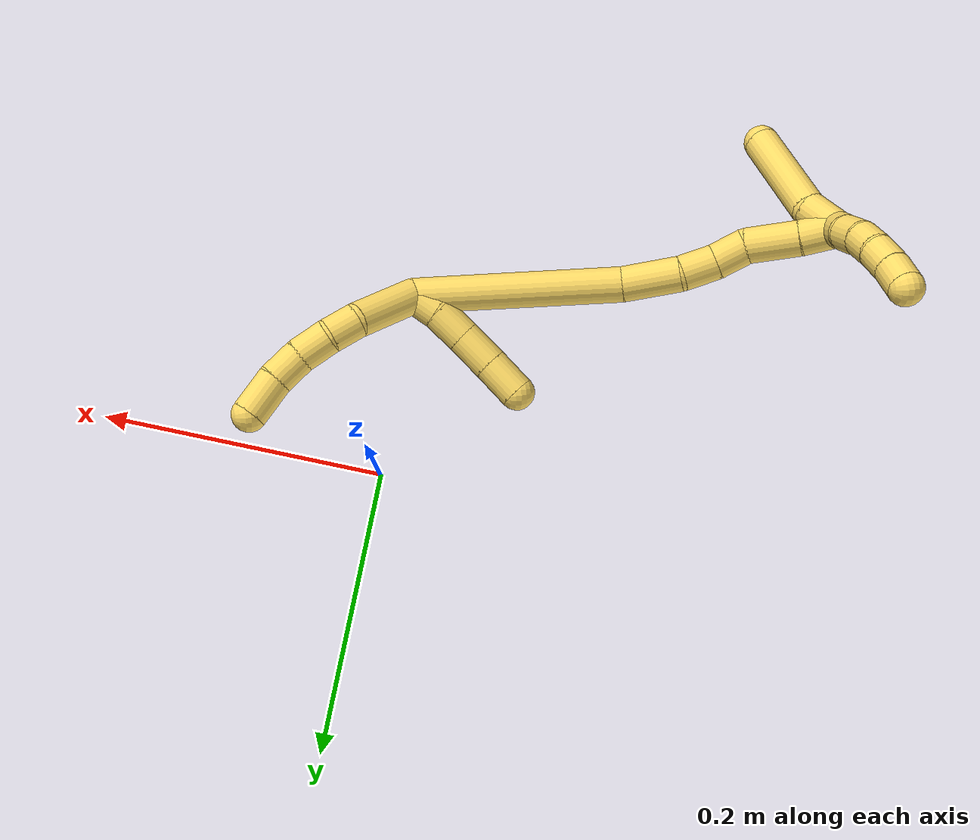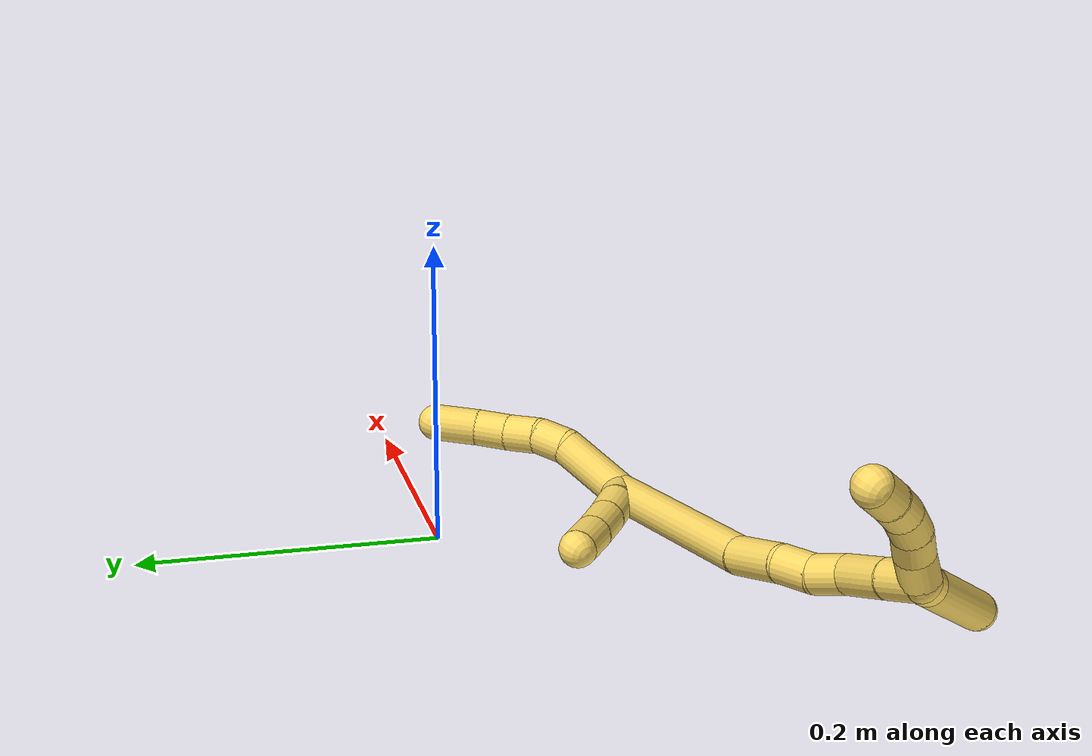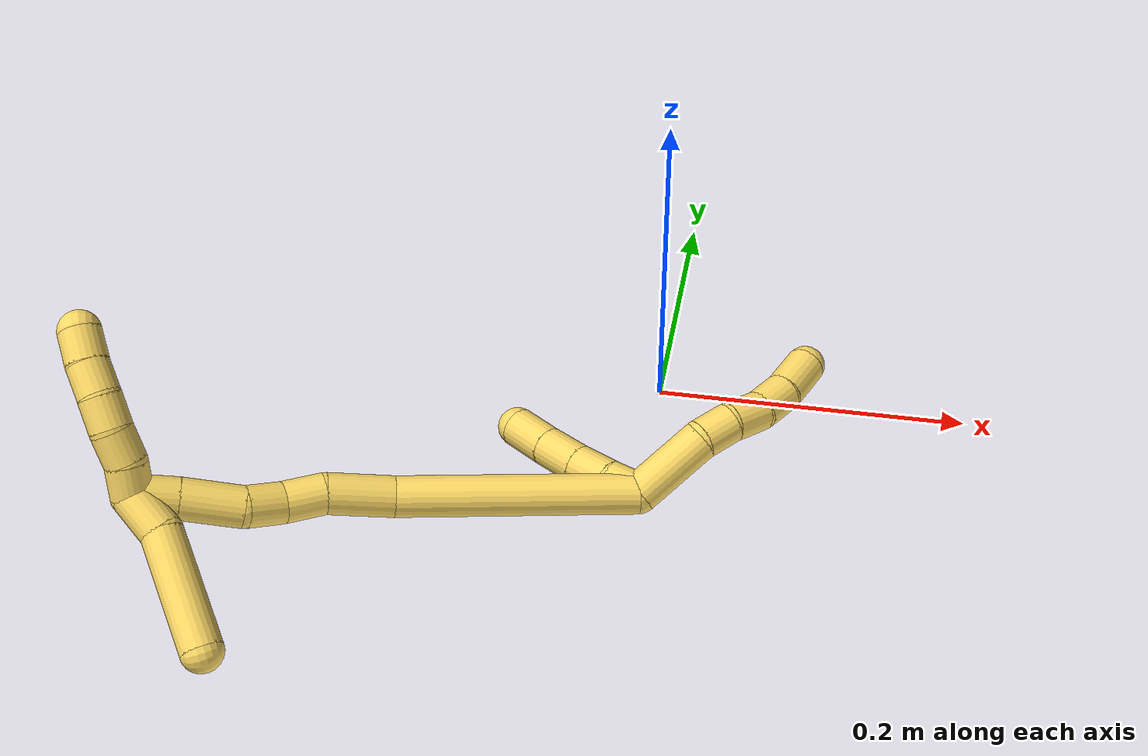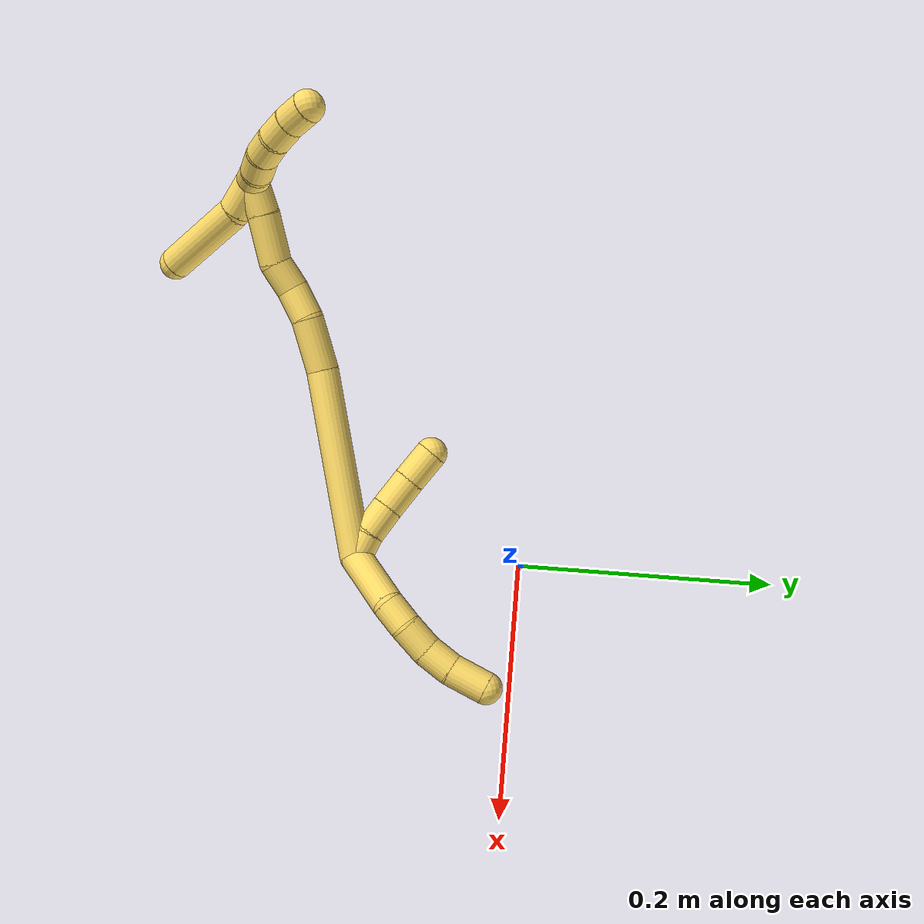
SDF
<sdf version="1.7">
 <world name="default">
  <model name="5">
   <static>0</static>
   <link name="5">
    <collision name="collision-cylinder-e_1_2_8">
     <pose>0.001376 -0.010261 -0.022862 2.71974 0.054838 0.254796</pose>
     <geometry><cylinder><radius>0.0125</radius><length>0.050194</length></cylinder></geometry>
     <surface>
      <friction><ode><mu>1.16</mu><mu2>1.16</mu2><slip1>0</slip1><slip2>0</slip2></ode></friction>
      <contact><ode><kp>1e+06</kp><kd>1</kd><max_vel>0</max_vel><min_depth>0.001</min_depth></ode></contact>
     </surface>
    </collision>
    <visual name="visual-cylinder-e_1_2_8">
     <pose>0.001376 -0.010261 -0.022862 2.71974 0.054838 0.254796</pose>
     <geometry><cylinder><radius>0.0125</radius><length>0.050194</length></cylinder></geometry>
     <material><ambient>1 0.858824 0.4 1</ambient></material>
    </visual>
    <collision name="collision-cylinder-e_2_8_9">
     <pose>0.006165 -0.02277 -0.056005 2.92624 0.31371 1.94251</pose>
     <geometry><cylinder><radius>0.0125</radius><length>0.022126</length></cylinder></geometry>
     <surface>
      <friction><ode><mu>1.16</mu><mu2>1.16</mu2><slip1>0</slip1><slip2>0</slip2></ode></friction>
      <contact><ode><kp>1e+06</kp><kd>1</kd><max_vel>0</max_vel><min_depth>0.001</min_depth></ode></contact>
     </surface>
    </collision>
    <visual name="visual-cylinder-e_2_8_9">
     <pose>0.006165 -0.02277 -0.056005 2.92624 0.31371 1.94251</pose>
     <geometry><cylinder><radius>0.0125</radius><length>0.022126</length></cylinder></geometry>
     <material><ambient>1 0.858824 0.4 1</ambient></material>
    </visual>
    <collision name="collision-cylinder-e_3_9_10">
     <pose>0.015345 -0.025571 -0.076835 3.08929 0.499603 2.93727</pose>
     <geometry><cylinder><radius>0.0125</radius><length>0.02407</length></cylinder></geometry>
     <surface>
      <friction><ode><mu>1.16</mu><mu2>1.16</mu2><slip1>0</slip1><slip2>0</slip2></ode></friction>
      <contact><ode><kp>1e+06</kp><kd>1</kd><max_vel>0</max_vel><min_depth>0.001</min_depth></ode></contact>
     </surface>
    </collision>
    <visual name="visual-cylinder-e_3_9_10">
     <pose>0.015345 -0.025571 -0.076835 3.08929 0.499603 2.93727</pose>
     <geometry><cylinder><radius>0.0125</radius><length>0.02407</length></cylinder></geometry>
     <material><ambient>1 0.858824 0.4 1</ambient></material>
    </visual>
    <collision name="collision-cylinder-e_4_10_11">
     <pose>0.027311 -0.029119 -0.096987 2.8392 0.552402 2.15515</pose>
     <geometry><cylinder><radius>0.0125</radius><length>0.023635</length></cylinder></geometry>
     <surface>
      <friction><ode><mu>1.16</mu><mu2>1.16</mu2><slip1>0</slip1><slip2>0</slip2></ode></friction>
      <contact><ode><kp>1e+06</kp><kd>1</kd><max_vel>0</max_vel><min_depth>0.001</min_depth></ode></contact>
     </surface>
    </collision>
    <visual name="visual-cylinder-e_4_10_11">
     <pose>0.027311 -0.029119 -0.096987 2.8392 0.552402 2.15515</pose>
     <geometry><cylinder><radius>0.0125</radius><length>0.023635</length></cylinder></geometry>
     <material><ambient>1 0.858824 0.4 1</ambient></material>
    </visual>
    <collision name="collision-cylinder-e_5_11_6">
     <pose>0.042509 -0.037759 -0.117165 2.65132 0.643859 1.85451</pose>
     <geometry><cylinder><radius>0.0125</radius><length>0.029975</length></cylinder></geometry>
     <surface>
      <friction><ode><mu>1.16</mu><mu2>1.16</mu2><slip1>0</slip1><slip2>0</slip2></ode></friction>
      <contact><ode><kp>1e+06</kp><kd>1</kd><max_vel>0</max_vel><min_depth>0.001</min_depth></ode></contact>
     </surface>
    </collision>
    <visual name="visual-cylinder-e_5_11_6">
     <pose>0.042509 -0.037759 -0.117165 2.65132 0.643859 1.85451</pose>
     <geometry><cylinder><radius>0.0125</radius><length>0.029975</length></cylinder></geometry>
     <material><ambient>1 0.858824 0.4 1</ambient></material>
    </visual>
    <collision name="collision-cylinder-e_1_2_12">
     <pose>0.004665 -0.005939 0.007182 0.690879 0.464104 0.169672</pose>
     <geometry><cylinder><radius>0.0125</radius><length>0.020844</length></cylinder></geometry>
     <surface>
      <friction><ode><mu>1.16</mu><mu2>1.16</mu2><slip1>0</slip1><slip2>0</slip2></ode></friction>
      <contact><ode><kp>1e+06</kp><kd>1</kd><max_vel>0</max_vel><min_depth>0.001</min_depth></ode></contact>
     </surface>
    </collision>
    <visual name="visual-cylinder-e_1_2_12">
     <pose>0.004665 -0.005939 0.007182 0.690879 0.464104 0.169672</pose>
     <geometry><cylinder><radius>0.0125</radius><length>0.020844</length></cylinder></geometry>
     <material><ambient>1 0.858824 0.4 1</ambient></material>
    </visual>
    <collision name="collision-cylinder-e_2_12_13">
     <pose>0.016799 -0.018432 0.021714 0.72835 0.648843 0.254992</pose>
     <geometry><cylinder><radius>0.0125</radius><length>0.024719</length></cylinder></geometry>
     <surface>
      <friction><ode><mu>1.16</mu><mu2>1.16</mu2><slip1>0</slip1><slip2>0</slip2></ode></friction>
      <contact><ode><kp>1e+06</kp><kd>1</kd><max_vel>0</max_vel><min_depth>0.001</min_depth></ode></contact>
     </surface>
    </collision>
    <visual name="visual-cylinder-e_2_12_13">
     <pose>0.016799 -0.018432 0.021714 0.72835 0.648843 0.254992</pose>
     <geometry><cylinder><radius>0.0125</radius><length>0.024719</length></cylinder></geometry>
     <material><ambient>1 0.858824 0.4 1</ambient></material>
    </visual>
    <collision name="collision-cylinder-e_3_13_14">
     <pose>0.032349 -0.032752 0.036709 0.793107 0.638149 0.274925</pose>
     <geometry><cylinder><radius>0.0125</radius><length>0.027134</length></cylinder></geometry>
     <surface>
      <friction><ode><mu>1.16</mu><mu2>1.16</mu2><slip1>0</slip1><slip2>0</slip2></ode></friction>
      <contact><ode><kp>1e+06</kp><kd>1</kd><max_vel>0</max_vel><min_depth>0.001</min_depth></ode></contact>
     </surface>
    </collision>
    <visual name="visual-cylinder-e_3_13_14">
     <pose>0.032349 -0.032752 0.036709 0.793107 0.638149 0.274925</pose>
     <geometry><cylinder><radius>0.0125</radius><length>0.027134</length></cylinder></geometry>
     <material><ambient>1 0.858824 0.4 1</ambient></material>
    </visual>
    <collision name="collision-cylinder-e_4_14_5">
     <pose>0.048506 -0.048727 0.051686 0.841901 0.632888 0.291131</pose>
     <geometry><cylinder><radius>0.0125</radius><length>0.027303</length></cylinder></geometry>
     <surface>
      <friction><ode><mu>1.16</mu><mu2>1.16</mu2><slip1>0</slip1><slip2>0</slip2></ode></friction>
      <contact><ode><kp>1e+06</kp><kd>1</kd><max_vel>0</max_vel><min_depth>0.001</min_depth></ode></contact>
     </surface>
    </collision>
    <visual name="visual-cylinder-e_4_14_5">
     <pose>0.048506 -0.048727 0.051686 0.841901 0.632888 0.291131</pose>
     <geometry><cylinder><radius>0.0125</radius><length>0.027303</length></cylinder></geometry>
     <material><ambient>1 0.858824 0.4 1</ambient></material>
    </visual>
    <collision name="collision-cylinder-e_1_2_15">
     <pose>-0.004081 -0.020034 0.070409 0.277209 -0.055686 -0.00777</pose>
     <geometry><cylinder><radius>0.0125</radius><length>0.146635</length></cylinder></geometry>
     <surface>
      <friction><ode><mu>1.16</mu><mu2>1.16</mu2><slip1>0</slip1><slip2>0</slip2></ode></friction>
      <contact><ode><kp>1e+06</kp><kd>1</kd><max_vel>0</max_vel><min_depth>0.001</min_depth></ode></contact>
     </surface>
    </collision>
    <visual name="visual-cylinder-e_1_2_15">
     <pose>-0.004081 -0.020034 0.070409 0.277209 -0.055686 -0.00777</pose>
     <geometry><cylinder><radius>0.0125</radius><length>0.146635</length></cylinder></geometry>
     <material><ambient>1 0.858824 0.4 1</ambient></material>
    </visual>
    <collision name="collision-cylinder-e_2_15_16">
     <pose>-0.012881 -0.046987 0.159732 0.350708 -0.230219 -0.040964</pose>
     <geometry><cylinder><radius>0.0125</radius><length>0.041371</length></cylinder></geometry>
     <surface>
      <friction><ode><mu>1.16</mu><mu2>1.16</mu2><slip1>0</slip1><slip2>0</slip2></ode></friction>
      <contact><ode><kp>1e+06</kp><kd>1</kd><max_vel>0</max_vel><min_depth>0.001</min_depth></ode></contact>
     </surface>
    </collision>
    <visual name="visual-cylinder-e_2_15_16">
     <pose>-0.012881 -0.046987 0.159732 0.350708 -0.230219 -0.040964</pose>
     <geometry><cylinder><radius>0.0125</radius><length>0.041371</length></cylinder></geometry>
     <material><ambient>1 0.858824 0.4 1</ambient></material>
    </visual>
    <collision name="collision-cylinder-e_3_16_17">
     <pose>-0.020937 -0.054938 0.19077 0.084888 -0.26755 -0.011431</pose>
     <geometry><cylinder><radius>0.0125</radius><length>0.025233</length></cylinder></geometry>
     <surface>
      <friction><ode><mu>1.16</mu><mu2>1.16</mu2><slip1>0</slip1><slip2>0</slip2></ode></friction>
      <contact><ode><kp>1e+06</kp><kd>1</kd><max_vel>0</max_vel><min_depth>0.001</min_depth></ode></contact>
     </surface>
    </collision>
    <visual name="visual-cylinder-e_3_16_17">
     <pose>-0.020937 -0.054938 0.19077 0.084888 -0.26755 -0.011431</pose>
     <geometry><cylinder><radius>0.0125</radius><length>0.025233</length></cylinder></geometry>
     <material><ambient>1 0.858824 0.4 1</ambient></material>
    </visual>
    <collision name="collision-cylinder-e_4_17_18">
     <pose>-0.029954 -0.058105 0.213051 0.207192 -0.500856 -0.053177</pose>
     <geometry><cylinder><radius>0.0125</radius><length>0.023665</length></cylinder></geometry>
     <surface>
      <friction><ode><mu>1.16</mu><mu2>1.16</mu2><slip1>0</slip1><slip2>0</slip2></ode></friction>
      <contact><ode><kp>1e+06</kp><kd>1</kd><max_vel>0</max_vel><min_depth>0.001</min_depth></ode></contact>
     </surface>
    </collision>
    <visual name="visual-cylinder-e_4_17_18">
     <pose>-0.029954 -0.058105 0.213051 0.207192 -0.500856 -0.053177</pose>
     <geometry><cylinder><radius>0.0125</radius><length>0.023665</length></cylinder></geometry>
     <material><ambient>1 0.858824 0.4 1</ambient></material>
    </visual>
    <collision name="collision-cylinder-e_5_18_19">
     <pose>-0.039894 -0.068057 0.239678 0.443155 -0.229422 -0.0519</pose>
     <geometry><cylinder><radius>0.0125</radius><length>0.037443</length></cylinder></geometry>
     <surface>
      <friction><ode><mu>1.16</mu><mu2>1.16</mu2><slip1>0</slip1><slip2>0</slip2></ode></friction>
      <contact><ode><kp>1e+06</kp><kd>1</kd><max_vel>0</max_vel><min_depth>0.001</min_depth></ode></contact>
     </surface>
    </collision>
    <visual name="visual-cylinder-e_5_18_19">
     <pose>-0.039894 -0.068057 0.239678 0.443155 -0.229422 -0.0519</pose>
     <geometry><cylinder><radius>0.0125</radius><length>0.037443</length></cylinder></geometry>
     <material><ambient>1 0.858824 0.4 1</ambient></material>
    </visual>
    <collision name="collision-cylinder-e_6_19_1">
     <pose>-0.047881 -0.080363 0.26757 0.374432 -0.295058 -0.056288</pose>
     <geometry><cylinder><radius>0.0125</radius><length>0.025653</length></cylinder></geometry>
     <surface>
      <friction><ode><mu>1.16</mu><mu2>1.16</mu2><slip1>0</slip1><slip2>0</slip2></ode></friction>
      <contact><ode><kp>1e+06</kp><kd>1</kd><max_vel>0</max_vel><min_depth>0.001</min_depth></ode></contact>
     </surface>
    </collision>
    <visual name="visual-cylinder-e_6_19_1">
     <pose>-0.047881 -0.080363 0.26757 0.374432 -0.295058 -0.056288</pose>
     <geometry><cylinder><radius>0.0125</radius><length>0.025653</length></cylinder></geometry>
     <material><ambient>1 0.858824 0.4 1</ambient></material>
    </visual>
    <collision name="collision-cylinder-e_1_1_20">
     <pose>-0.054549 -0.094277 0.277403 1.73778 -0.298229 -0.351671</pose>
     <geometry><cylinder><radius>0.0125</radius><length>0.02</length></cylinder></geometry>
     <surface>
      <friction><ode><mu>1.16</mu><mu2>1.16</mu2><slip1>0</slip1><slip2>0</slip2></ode></friction>
      <contact><ode><kp>1e+06</kp><kd>1</kd><max_vel>0</max_vel><min_depth>0.001</min_depth></ode></contact>
     </surface>
    </collision>
    <visual name="visual-cylinder-e_1_1_20">
     <pose>-0.054549 -0.094277 0.277403 1.73778 -0.298229 -0.351671</pose>
     <geometry><cylinder><radius>0.0125</radius><length>0.02</length></cylinder></geometry>
     <material><ambient>1 0.858824 0.4 1</ambient></material>
    </visual>
    <collision name="collision-cylinder-e_2_20_21">
     <pose>-0.059583 -0.113445 0.276649 1.48531 -0.211112 -0.193907</pose>
     <geometry><cylinder><radius>0.0125</radius><length>0.02</length></cylinder></geometry>
     <surface>
      <friction><ode><mu>1.16</mu><mu2>1.16</mu2><slip1>0</slip1><slip2>0</slip2></ode></friction>
      <contact><ode><kp>1e+06</kp><kd>1</kd><max_vel>0</max_vel><min_depth>0.001</min_depth></ode></contact>
     </surface>
    </collision>
    <visual name="visual-cylinder-e_2_20_21">
     <pose>-0.059583 -0.113445 0.276649 1.48531 -0.211112 -0.193907</pose>
     <geometry><cylinder><radius>0.0125</radius><length>0.02</length></cylinder></geometry>
     <material><ambient>1 0.858824 0.4 1</ambient></material>
    </visual>
    <collision name="collision-cylinder-e_3_21_22">
     <pose>-0.061553 -0.13317 0.278044 1.51476 0.012553 0.011869</pose>
     <geometry><cylinder><radius>0.0125</radius><length>0.02</length></cylinder></geometry>
     <surface>
      <friction><ode><mu>1.16</mu><mu2>1.16</mu2><slip1>0</slip1><slip2>0</slip2></ode></friction>
      <contact><ode><kp>1e+06</kp><kd>1</kd><max_vel>0</max_vel><min_depth>0.001</min_depth></ode></contact>
     </surface>
    </collision>
    <visual name="visual-cylinder-e_3_21_22">
     <pose>-0.061553 -0.13317 0.278044 1.51476 0.012553 0.011869</pose>
     <geometry><cylinder><radius>0.0125</radius><length>0.02</length></cylinder></geometry>
     <material><ambient>1 0.858824 0.4 1</ambient></material>
    </visual>
    <collision name="collision-cylinder-e_4_22_23">
     <pose>-0.059663 -0.15294 0.279664 1.46285 0.17735 0.159251</pose>
     <geometry><cylinder><radius>0.0125</radius><length>0.02</length></cylinder></geometry>
     <surface>
      <friction><ode><mu>1.16</mu><mu2>1.16</mu2><slip1>0</slip1><slip2>0</slip2></ode></friction>
      <contact><ode><kp>1e+06</kp><kd>1</kd><max_vel>0</max_vel><min_depth>0.001</min_depth></ode></contact>
     </surface>
    </collision>
    <visual name="visual-cylinder-e_4_22_23">
     <pose>-0.059663 -0.15294 0.279664 1.46285 0.17735 0.159251</pose>
     <geometry><cylinder><radius>0.0125</radius><length>0.02</length></cylinder></geometry>
     <material><ambient>1 0.858824 0.4 1</ambient></material>
    </visual>
    <collision name="collision-cylinder-e_5_23_4">
     <pose>-0.055596 -0.172456 0.280865 1.55639 0.232343 0.229049</pose>
     <geometry><cylinder><radius>0.0125</radius><length>0.02</length></cylinder></geometry>
     <surface>
      <friction><ode><mu>1.16</mu><mu2>1.16</mu2><slip1>0</slip1><slip2>0</slip2></ode></friction>
      <contact><ode><kp>1e+06</kp><kd>1</kd><max_vel>0</max_vel><min_depth>0.001</min_depth></ode></contact>
     </surface>
    </collision>
    <visual name="visual-cylinder-e_5_23_4">
     <pose>-0.055596 -0.172456 0.280865 1.55639 0.232343 0.229049</pose>
     <geometry><cylinder><radius>0.0125</radius><length>0.02</length></cylinder></geometry>
     <material><ambient>1 0.858824 0.4 1</ambient></material>
    </visual>
    <collision name="collision-cylinder-e_1_1_24">
     <pose>-0.054882 -0.072685 0.27323 -2.01306 -0.238375 0.374004</pose>
     <geometry><cylinder><radius>0.0125</radius><length>0.027706</length></cylinder></geometry>
     <surface>
      <friction><ode><mu>1.16</mu><mu2>1.16</mu2><slip1>0</slip1><slip2>0</slip2></ode></friction>
      <contact><ode><kp>1e+06</kp><kd>1</kd><max_vel>0</max_vel><min_depth>0.001</min_depth></ode></contact>
     </surface>
    </collision>
    <visual name="visual-cylinder-e_1_1_24">
     <pose>-0.054882 -0.072685 0.27323 -2.01306 -0.238375 0.374004</pose>
     <geometry><cylinder><radius>0.0125</radius><length>0.027706</length></cylinder></geometry>
     <material><ambient>1 0.858824 0.4 1</ambient></material>
    </visual>
    <collision name="collision-cylinder-e_2_24_3">
     <pose>-0.069591 -0.02646 0.263494 -1.68698 -0.321979 0.360932</pose>
     <geometry><cylinder><radius>0.0125</radius><length>0.072294</length></cylinder></geometry>
     <surface>
      <friction><ode><mu>1.16</mu><mu2>1.16</mu2><slip1>0</slip1><slip2>0</slip2></ode></friction>
      <contact><ode><kp>1e+06</kp><kd>1</kd><max_vel>0</max_vel><min_depth>0.001</min_depth></ode></contact>
     </surface>
    </collision>
    <visual name="visual-cylinder-e_2_24_3">
     <pose>-0.069591 -0.02646 0.263494 -1.68698 -0.321979 0.360932</pose>
     <geometry><cylinder><radius>0.0125</radius><length>0.072294</length></cylinder></geometry>
     <material><ambient>1 0.858824 0.4 1</ambient></material>
    </visual>
    <collision name="collision-sphere-3">
     <pose>-0.08103 0.007598 0.259519 0 -0 0</pose>
     <geometry><sphere><radius>0.0125</radius></sphere></geometry>
     <surface>
      <friction><ode><mu>1.16</mu><mu2>1.16</mu2><slip1>0</slip1><slip2>0</slip2></ode></friction>
      <contact><ode><kp>1e+06</kp><kd>1</kd><max_vel>0</max_vel><min_depth>0.001</min_depth></ode></contact>
     </surface>
    </collision>
    <visual name="visual-sphere-3">
     <pose>-0.08103 0.007598 0.259519 0 -0 0</pose>
     <geometry><sphere><radius>0.0125</radius></sphere></geometry>
     <material><ambient>1 0.858824 0.4 1</ambient></material>
    </visual>
    <collision name="collision-sphere-24">
     <pose>-0.058153 -0.060519 0.267469 0 -0 0</pose>
     <geometry><sphere><radius>0.0125</radius></sphere></geometry>
     <surface>
      <friction><ode><mu>1.16</mu><mu2>1.16</mu2><slip1>0</slip1><slip2>0</slip2></ode></friction>
      <contact><ode><kp>1e+06</kp><kd>1</kd><max_vel>0</max_vel><min_depth>0.001</min_depth></ode></contact>
     </surface>
    </collision>
    <visual name="visual-sphere-24">
     <pose>-0.058153 -0.060519 0.267469 0 -0 0</pose>
     <geometry><sphere><radius>0.0125</radius></sphere></geometry>
     <material><ambient>1 0.858824 0.4 1</ambient></material>
    </visual>
    <collision name="collision-sphere-4">
     <pose>-0.053294 -0.182186 0.281005 0 -0 0</pose>
     <geometry><sphere><radius>0.0125</radius></sphere></geometry>
     <surface>
      <friction><ode><mu>1.16</mu><mu2>1.16</mu2><slip1>0</slip1><slip2>0</slip2></ode></friction>
      <contact><ode><kp>1e+06</kp><kd>1</kd><max_vel>0</max_vel><min_depth>0.001</min_depth></ode></contact>
     </surface>
    </collision>
    <visual name="visual-sphere-4">
     <pose>-0.053294 -0.182186 0.281005 0 -0 0</pose>
     <geometry><sphere><radius>0.0125</radius></sphere></geometry>
     <material><ambient>1 0.858824 0.4 1</ambient></material>
    </visual>
    <collision name="collision-sphere-23">
     <pose>-0.057899 -0.162726 0.280725 0 -0 0</pose>
     <geometry><sphere><radius>0.0125</radius></sphere></geometry>
     <surface>
      <friction><ode><mu>1.16</mu><mu2>1.16</mu2><slip1>0</slip1><slip2>0</slip2></ode></friction>
      <contact><ode><kp>1e+06</kp><kd>1</kd><max_vel>0</max_vel><min_depth>0.001</min_depth></ode></contact>
     </surface>
    </collision>
    <visual name="visual-sphere-23">
     <pose>-0.057899 -0.162726 0.280725 0 -0 0</pose>
     <geometry><sphere><radius>0.0125</radius></sphere></geometry>
     <material><ambient>1 0.858824 0.4 1</ambient></material>
    </visual>
    <collision name="collision-sphere-22">
     <pose>-0.061427 -0.143154 0.278604 0 -0 0</pose>
     <geometry><sphere><radius>0.0125</radius></sphere></geometry>
     <surface>
      <friction><ode><mu>1.16</mu><mu2>1.16</mu2><slip1>0</slip1><slip2>0</slip2></ode></friction>
      <contact><ode><kp>1e+06</kp><kd>1</kd><max_vel>0</max_vel><min_depth>0.001</min_depth></ode></contact>
     </surface>
    </collision>
    <visual name="visual-sphere-22">
     <pose>-0.061427 -0.143154 0.278604 0 -0 0</pose>
     <geometry><sphere><radius>0.0125</radius></sphere></geometry>
     <material><ambient>1 0.858824 0.4 1</ambient></material>
    </visual>
    <collision name="collision-sphere-21">
     <pose>-0.061678 -0.123187 0.277484 0 -0 0</pose>
     <geometry><sphere><radius>0.0125</radius></sphere></geometry>
     <surface>
      <friction><ode><mu>1.16</mu><mu2>1.16</mu2><slip1>0</slip1><slip2>0</slip2></ode></friction>
      <contact><ode><kp>1e+06</kp><kd>1</kd><max_vel>0</max_vel><min_depth>0.001</min_depth></ode></contact>
     </surface>
    </collision>
    <visual name="visual-sphere-21">
     <pose>-0.061678 -0.123187 0.277484 0 -0 0</pose>
     <geometry><sphere><radius>0.0125</radius></sphere></geometry>
     <material><ambient>1 0.858824 0.4 1</ambient></material>
    </visual>
    <collision name="collision-sphere-20">
     <pose>-0.057487 -0.103702 0.275814 0 -0 0</pose>
     <geometry><sphere><radius>0.0125</radius></sphere></geometry>
     <surface>
      <friction><ode><mu>1.16</mu><mu2>1.16</mu2><slip1>0</slip1><slip2>0</slip2></ode></friction>
      <contact><ode><kp>1e+06</kp><kd>1</kd><max_vel>0</max_vel><min_depth>0.001</min_depth></ode></contact>
     </surface>
    </collision>
    <visual name="visual-sphere-20">
     <pose>-0.057487 -0.103702 0.275814 0 -0 0</pose>
     <geometry><sphere><radius>0.0125</radius></sphere></geometry>
     <material><ambient>1 0.858824 0.4 1</ambient></material>
    </visual>
    <collision name="collision-sphere-6">
     <pose>0.051506 -0.043403 -0.12774 0 -0 0</pose>
     <geometry><sphere><radius>0.0125</radius></sphere></geometry>
     <surface>
      <friction><ode><mu>1.16</mu><mu2>1.16</mu2><slip1>0</slip1><slip2>0</slip2></ode></friction>
      <contact><ode><kp>1e+06</kp><kd>1</kd><max_vel>0</max_vel><min_depth>0.001</min_depth></ode></contact>
     </surface>
    </collision>
    <visual name="visual-sphere-6">
     <pose>0.051506 -0.043403 -0.12774 0 -0 0</pose>
     <geometry><sphere><radius>0.0125</radius></sphere></geometry>
     <material><ambient>1 0.858824 0.4 1</ambient></material>
    </visual>
    <collision name="collision-sphere-11">
     <pose>0.033512 -0.032115 -0.106591 0 -0 0</pose>
     <geometry><sphere><radius>0.0125</radius></sphere></geometry>
     <surface>
      <friction><ode><mu>1.16</mu><mu2>1.16</mu2><slip1>0</slip1><slip2>0</slip2></ode></friction>
      <contact><ode><kp>1e+06</kp><kd>1</kd><max_vel>0</max_vel><min_depth>0.001</min_depth></ode></contact>
     </surface>
    </collision>
    <visual name="visual-sphere-11">
     <pose>0.033512 -0.032115 -0.106591 0 -0 0</pose>
     <geometry><sphere><radius>0.0125</radius></sphere></geometry>
     <material><ambient>1 0.858824 0.4 1</ambient></material>
    </visual>
    <collision name="collision-sphere-10">
     <pose>0.02111 -0.026123 -0.087384 0 -0 0</pose>
     <geometry><sphere><radius>0.0125</radius></sphere></geometry>
     <surface>
      <friction><ode><mu>1.16</mu><mu2>1.16</mu2><slip1>0</slip1><slip2>0</slip2></ode></friction>
      <contact><ode><kp>1e+06</kp><kd>1</kd><max_vel>0</max_vel><min_depth>0.001</min_depth></ode></contact>
     </surface>
    </collision>
    <visual name="visual-sphere-10">
     <pose>0.02111 -0.026123 -0.087384 0 -0 0</pose>
     <geometry><sphere><radius>0.0125</radius></sphere></geometry>
     <material><ambient>1 0.858824 0.4 1</ambient></material>
    </visual>
    <collision name="collision-sphere-9">
     <pose>0.009579 -0.025019 -0.066285 0 -0 0</pose>
     <geometry><sphere><radius>0.0125</radius></sphere></geometry>
     <surface>
      <friction><ode><mu>1.16</mu><mu2>1.16</mu2><slip1>0</slip1><slip2>0</slip2></ode></friction>
      <contact><ode><kp>1e+06</kp><kd>1</kd><max_vel>0</max_vel><min_depth>0.001</min_depth></ode></contact>
     </surface>
    </collision>
    <visual name="visual-sphere-9">
     <pose>0.009579 -0.025019 -0.066285 0 -0 0</pose>
     <geometry><sphere><radius>0.0125</radius></sphere></geometry>
     <material><ambient>1 0.858824 0.4 1</ambient></material>
    </visual>
    <collision name="collision-sphere-2">
     <geometry><sphere><radius>0.0125</radius></sphere></geometry>
     <surface>
      <friction><ode><mu>1.16</mu><mu2>1.16</mu2><slip1>0</slip1><slip2>0</slip2></ode></friction>
      <contact><ode><kp>1e+06</kp><kd>1</kd><max_vel>0</max_vel><min_depth>0.001</min_depth></ode></contact>
     </surface>
    </collision>
    <visual name="visual-sphere-2">
     <geometry><sphere><radius>0.0125</radius></sphere></geometry>
     <material><ambient>1 0.858824 0.4 1</ambient></material>
    </visual>
    <collision name="collision-sphere-19">
     <pose>-0.044151 -0.075874 0.256148 0 -0 0</pose>
     <geometry><sphere><radius>0.0125</radius></sphere></geometry>
     <surface>
      <friction><ode><mu>1.16</mu><mu2>1.16</mu2><slip1>0</slip1><slip2>0</slip2></ode></friction>
      <contact><ode><kp>1e+06</kp><kd>1</kd><max_vel>0</max_vel><min_depth>0.001</min_depth></ode></contact>
     </surface>
    </collision>
    <visual name="visual-sphere-19">
     <pose>-0.044151 -0.075874 0.256148 0 -0 0</pose>
     <geometry><sphere><radius>0.0125</radius></sphere></geometry>
     <material><ambient>1 0.858824 0.4 1</ambient></material>
    </visual>
    <collision name="collision-sphere-8">
     <pose>0.002751 -0.020521 -0.045725 0 -0 0</pose>
     <geometry><sphere><radius>0.0125</radius></sphere></geometry>
     <surface>
      <friction><ode><mu>1.16</mu><mu2>1.16</mu2><slip1>0</slip1><slip2>0</slip2></ode></friction>
      <contact><ode><kp>1e+06</kp><kd>1</kd><max_vel>0</max_vel><min_depth>0.001</min_depth></ode></contact>
     </surface>
    </collision>
    <visual name="visual-sphere-8">
     <pose>0.002751 -0.020521 -0.045725 0 -0 0</pose>
     <geometry><sphere><radius>0.0125</radius></sphere></geometry>
     <material><ambient>1 0.858824 0.4 1</ambient></material>
    </visual>
    <collision name="collision-sphere-12">
     <pose>0.00933 -0.011877 0.014365 0 -0 0</pose>
     <geometry><sphere><radius>0.0125</radius></sphere></geometry>
     <surface>
      <friction><ode><mu>1.16</mu><mu2>1.16</mu2><slip1>0</slip1><slip2>0</slip2></ode></friction>
      <contact><ode><kp>1e+06</kp><kd>1</kd><max_vel>0</max_vel><min_depth>0.001</min_depth></ode></contact>
     </surface>
    </collision>
    <visual name="visual-sphere-12">
     <pose>0.00933 -0.011877 0.014365 0 -0 0</pose>
     <geometry><sphere><radius>0.0125</radius></sphere></geometry>
     <material><ambient>1 0.858824 0.4 1</ambient></material>
    </visual>
    <collision name="collision-sphere-13">
     <pose>0.024267 -0.024987 0.029063 0 -0 0</pose>
     <geometry><sphere><radius>0.0125</radius></sphere></geometry>
     <surface>
      <friction><ode><mu>1.16</mu><mu2>1.16</mu2><slip1>0</slip1><slip2>0</slip2></ode></friction>
      <contact><ode><kp>1e+06</kp><kd>1</kd><max_vel>0</max_vel><min_depth>0.001</min_depth></ode></contact>
     </surface>
    </collision>
    <visual name="visual-sphere-13">
     <pose>0.024267 -0.024987 0.029063 0 -0 0</pose>
     <geometry><sphere><radius>0.0125</radius></sphere></geometry>
     <material><ambient>1 0.858824 0.4 1</ambient></material>
    </visual>
    <collision name="collision-sphere-14">
     <pose>0.040431 -0.040517 0.044355 0 -0 0</pose>
     <geometry><sphere><radius>0.0125</radius></sphere></geometry>
     <surface>
      <friction><ode><mu>1.16</mu><mu2>1.16</mu2><slip1>0</slip1><slip2>0</slip2></ode></friction>
      <contact><ode><kp>1e+06</kp><kd>1</kd><max_vel>0</max_vel><min_depth>0.001</min_depth></ode></contact>
     </surface>
    </collision>
    <visual name="visual-sphere-14">
     <pose>0.040431 -0.040517 0.044355 0 -0 0</pose>
     <geometry><sphere><radius>0.0125</radius></sphere></geometry>
     <material><ambient>1 0.858824 0.4 1</ambient></material>
    </visual>
    <collision name="collision-sphere-5">
     <pose>0.05658 -0.056938 0.059018 0 -0 0</pose>
     <geometry><sphere><radius>0.0125</radius></sphere></geometry>
     <surface>
      <friction><ode><mu>1.16</mu><mu2>1.16</mu2><slip1>0</slip1><slip2>0</slip2></ode></friction>
      <contact><ode><kp>1e+06</kp><kd>1</kd><max_vel>0</max_vel><min_depth>0.001</min_depth></ode></contact>
     </surface>
    </collision>
    <visual name="visual-sphere-5">
     <pose>0.05658 -0.056938 0.059018 0 -0 0</pose>
     <geometry><sphere><radius>0.0125</radius></sphere></geometry>
     <material><ambient>1 0.858824 0.4 1</ambient></material>
    </visual>
    <collision name="collision-sphere-15">
     <pose>-0.008161 -0.040068 0.140818 0 -0 0</pose>
     <geometry><sphere><radius>0.0125</radius></sphere></geometry>
     <surface>
      <friction><ode><mu>1.16</mu><mu2>1.16</mu2><slip1>0</slip1><slip2>0</slip2></ode></friction>
      <contact><ode><kp>1e+06</kp><kd>1</kd><max_vel>0</max_vel><min_depth>0.001</min_depth></ode></contact>
     </surface>
    </collision>
    <visual name="visual-sphere-15">
     <pose>-0.008161 -0.040068 0.140818 0 -0 0</pose>
     <geometry><sphere><radius>0.0125</radius></sphere></geometry>
     <material><ambient>1 0.858824 0.4 1</ambient></material>
    </visual>
    <collision name="collision-sphere-16">
     <pose>-0.017602 -0.053906 0.178646 0 -0 0</pose>
     <geometry><sphere><radius>0.0125</radius></sphere></geometry>
     <surface>
      <friction><ode><mu>1.16</mu><mu2>1.16</mu2><slip1>0</slip1><slip2>0</slip2></ode></friction>
      <contact><ode><kp>1e+06</kp><kd>1</kd><max_vel>0</max_vel><min_depth>0.001</min_depth></ode></contact>
     </surface>
    </collision>
    <visual name="visual-sphere-16">
     <pose>-0.017602 -0.053906 0.178646 0 -0 0</pose>
     <geometry><sphere><radius>0.0125</radius></sphere></geometry>
     <material><ambient>1 0.858824 0.4 1</ambient></material>
    </visual>
    <collision name="collision-sphere-17">
     <pose>-0.024273 -0.055969 0.202894 0 -0 0</pose>
     <geometry><sphere><radius>0.0125</radius></sphere></geometry>
     <surface>
      <friction><ode><mu>1.16</mu><mu2>1.16</mu2><slip1>0</slip1><slip2>0</slip2></ode></friction>
      <contact><ode><kp>1e+06</kp><kd>1</kd><max_vel>0</max_vel><min_depth>0.001</min_depth></ode></contact>
     </surface>
    </collision>
    <visual name="visual-sphere-17">
     <pose>-0.024273 -0.055969 0.202894 0 -0 0</pose>
     <geometry><sphere><radius>0.0125</radius></sphere></geometry>
     <material><ambient>1 0.858824 0.4 1</ambient></material>
    </visual>
    <collision name="collision-sphere-18">
     <pose>-0.035636 -0.06024 0.223208 0 -0 0</pose>
     <geometry><sphere><radius>0.0125</radius></sphere></geometry>
     <surface>
      <friction><ode><mu>1.16</mu><mu2>1.16</mu2><slip1>0</slip1><slip2>0</slip2></ode></friction>
      <contact><ode><kp>1e+06</kp><kd>1</kd><max_vel>0</max_vel><min_depth>0.001</min_depth></ode></contact>
     </surface>
    </collision>
    <visual name="visual-sphere-18">
     <pose>-0.035636 -0.06024 0.223208 0 -0 0</pose>
     <geometry><sphere><radius>0.0125</radius></sphere></geometry>
     <material><ambient>1 0.858824 0.4 1</ambient></material>
    </visual>
    <collision name="collision-sphere-1">
     <pose>-0.051611 -0.084851 0.278992 0 -0 0</pose>
     <geometry><sphere><radius>0.0125</radius></sphere></geometry>
     <surface>
      <friction><ode><mu>1.16</mu><mu2>1.16</mu2><slip1>0</slip1><slip2>0</slip2></ode></friction>
      <contact><ode><kp>1e+06</kp><kd>1</kd><max_vel>0</max_vel><min_depth>0.001</min_depth></ode></contact>
     </surface>
    </collision>
    <visual name="visual-sphere-1">
     <pose>-0.051611 -0.084851 0.278992 0 -0 0</pose>
     <geometry><sphere><radius>0.0125</radius></sphere></geometry>
     <material><ambient>1 0.858824 0.4 1</ambient></material>
    </visual>
    <inertial>
     <pose>-0.016336 -0.047677 0.120202 0 -0 0</pose>
     <mass>0.75</mass>
     <inertia>
      <ixx>0.000365</ixx>
      <ixy>0</ixy>
      <ixz>0</ixz>
      <iyy>0.000285</iyy>
      <iyz>0</iyz>
      <izz>0.000101</izz>
     </inertia>
    </inertial>
   </link>
   <pose>0.002764 -0.126806 0.020639 -1.82151 0.649221 1.79487</pose>
  </model>
 </world>
</sdf>
